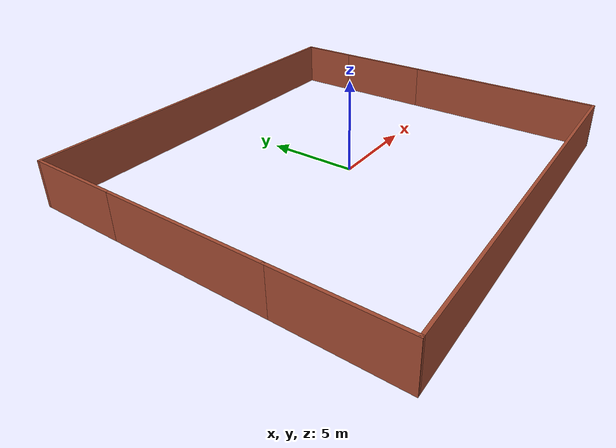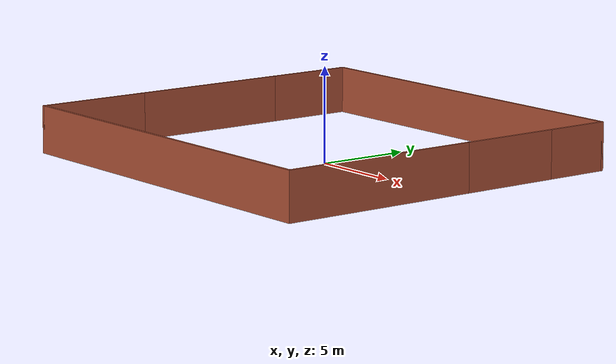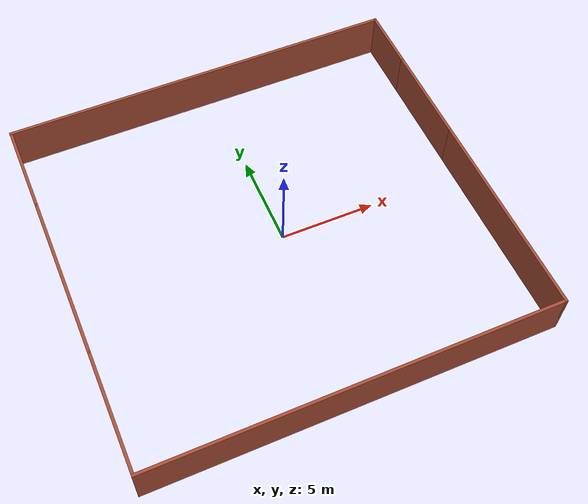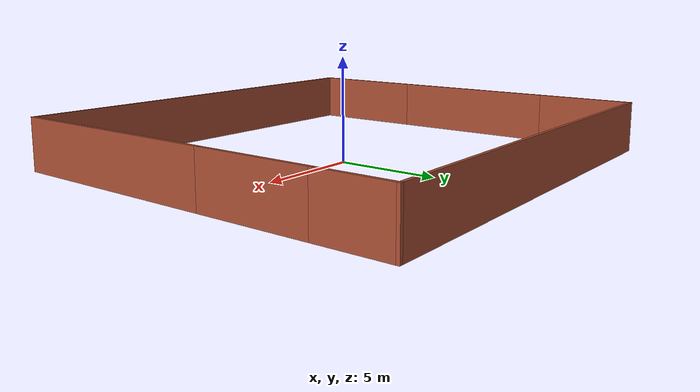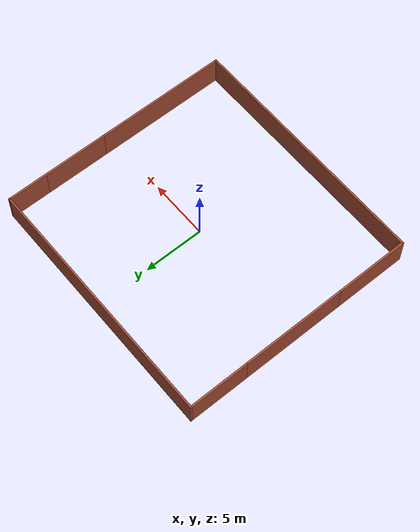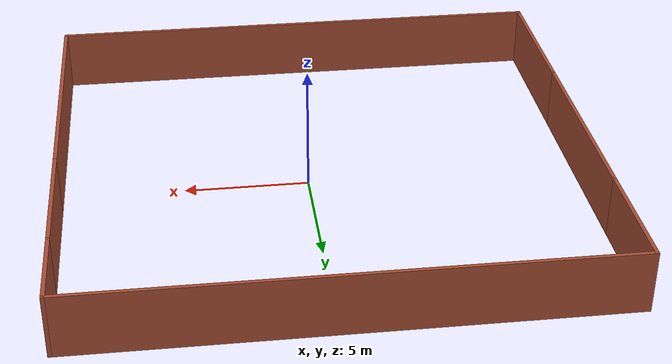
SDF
<?xml version='1.0'?>
<sdf version='1.6'>
  <model name='racecar_cones'>
    <pose frame=''>-0.555324 0.042658 0 0 -0 0</pose>
    <link name='Wall_10'>
      <collision name='Wall_10_Collision'>
        <geometry>
          <box>
            <size>6.25 0.15 2.5</size>
          </box>
        </geometry>
        <pose frame=''>0 0 1.25 0 -0 0</pose>
      </collision>
      <visual name='Wall_10_Visual'>
        <pose frame=''>0 0 1.25 0 -0 0</pose>
        <geometry>
          <box>
            <size>6.25 0.15 2.5</size>
          </box>
        </geometry>
        <material>
          <script>
            <uri>file://media/materials/scripts/gazebo.material</uri>
            <name>Gazebo/Bricks</name>
          </script>
          <ambient>1 1 1 1</ambient>
        </material>
      </visual>
      <pose frame=''>-10.425 -6.725 0 0 0 -1.5708</pose>
    </link>
    <link name='Wall_11'>
      <collision name='Wall_11_Collision'>
        <geometry>
          <box>
            <size>21 0.15 2.5</size>
          </box>
        </geometry>
        <pose frame=''>0 0 1.25 0 -0 0</pose>
      </collision>
      <visual name='Wall_11_Visual'>
        <pose frame=''>0 0 1.25 0 -0 0</pose>
        <geometry>
          <box>
            <size>21 0.15 2.5</size>
          </box>
        </geometry>
        <material>
          <script>
            <uri>file://media/materials/scripts/gazebo.material</uri>
            <name>Gazebo/Bricks</name>
          </script>
          <ambient>1 1 1 1</ambient>
        </material>
      </visual>
      <pose frame=''>0 -9.775 0 0 -0 0</pose>
    </link>
    <link name='Wall_13'>
      <collision name='Wall_13_Collision'>
        <geometry>
          <box>
            <size>11 0.15 2.5</size>
          </box>
        </geometry>
        <pose frame=''>0 0 1.25 0 -0 0</pose>
      </collision>
      <visual name='Wall_13_Visual'>
        <pose frame=''>0 0 1.25 0 -0 0</pose>
        <geometry>
          <box>
            <size>11 0.15 2.5</size>
          </box>
        </geometry>
        <material>
          <script>
            <uri>file://media/materials/scripts/gazebo.material</uri>
            <name>Gazebo/Bricks</name>
          </script>
          <ambient>1 1 1 1</ambient>
        </material>
      </visual>
      <pose frame=''>10.425 -4.35 0 0 -0 1.5708</pose>
    </link>
    <link name='Wall_15'>
      <collision name='Wall_15_Collision'>
        <geometry>
          <box>
            <size>5.5 0.15 2.5</size>
          </box>
        </geometry>
        <pose frame=''>0 0 1.25 0 -0 0</pose>
      </collision>
      <visual name='Wall_15_Visual'>
        <pose frame=''>0 0 1.25 0 -0 0</pose>
        <geometry>
          <box>
            <size>5.5 0.15 2.5</size>
          </box>
        </geometry>
        <material>
          <script>
            <uri>file://media/materials/scripts/gazebo.material</uri>
            <name>Gazebo/Bricks</name>
          </script>
          <ambient>1 1 1 1</ambient>
        </material>
      </visual>
      <pose frame=''>10.425 3.75 0 0 -0 1.5708</pose>
    </link>
    <link name='Wall_18'>
      <collision name='Wall_18_Collision'>
        <geometry>
          <box>
            <size>3.5 0.15 2.5</size>
          </box>
        </geometry>
        <pose frame=''>0 0 1.25 0 -0 0</pose>
      </collision>
      <visual name='Wall_18_Visual'>
        <pose frame=''>0 0 1.25 0 -0 0</pose>
        <geometry>
          <box>
            <size>3.5 0.15 2.5</size>
          </box>
        </geometry>
        <material>
          <script>
            <uri>file://media/materials/scripts/gazebo.material</uri>
            <name>Gazebo/Bricks</name>
          </script>
          <ambient>1 1 1 1</ambient>
        </material>
      </visual>
      <pose frame=''>10.425 8.1 0 0 -0 1.5708</pose>
    </link>
    <link name='Wall_19'>
      <collision name='Wall_19_Collision'>
        <geometry>
          <box>
            <size>21 0.15 2.5</size>
          </box>
        </geometry>
        <pose frame=''>0 0 1.25 0 -0 0</pose>
      </collision>
      <visual name='Wall_19_Visual'>
        <pose frame=''>0 0 1.25 0 -0 0</pose>
        <geometry>
          <box>
            <size>21 0.15 2.5</size>
          </box>
        </geometry>
        <material>
          <script>
            <uri>file://media/materials/scripts/gazebo.material</uri>
            <name>Gazebo/Bricks</name>
          </script>
          <ambient>1 1 1 1</ambient>
        </material>
      </visual>
      <pose frame=''>0 9.775 0 0 -0 3.14159</pose>
    </link>
    <link name='Wall_20'>
      <collision name='Wall_20_Collision'>
        <geometry>
          <box>
            <size>5 0.15 2.5</size>
          </box>
        </geometry>
        <pose frame=''>0 0 1.25 0 -0 0</pose>
      </collision>
      <visual name='Wall_20_Visual'>
        <pose frame=''>0 0 1.25 0 -0 0</pose>
        <geometry>
          <box>
            <size>5 0.15 2.5</size>
          </box>
        </geometry>
        <material>
          <script>
            <uri>file://media/materials/scripts/gazebo.material</uri>
            <name>Gazebo/Bricks</name>
          </script>
          <ambient>1 1 1 1</ambient>
        </material>
      </visual>
      <pose frame=''>-10.425 7.35 0 0 0 -1.5708</pose>
    </link>
    <link name='Wall_7'>
      <collision name='Wall_7_Collision'>
        <geometry>
          <box>
            <size>8.75 0.15 2.5</size>
          </box>
        </geometry>
        <pose frame=''>0 0 1.25 0 -0 0</pose>
      </collision>
      <visual name='Wall_7_Visual'>
        <pose frame=''>0 0 1.25 0 -0 0</pose>
        <geometry>
          <box>
            <size>8.75 0.15 2.5</size>
          </box>
        </geometry>
        <material>
          <script>
            <uri>file://media/materials/scripts/gazebo.material</uri>
            <name>Gazebo/Bricks</name>
          </script>
          <ambient>1 1 1 1</ambient>
        </material>
      </visual>
      <pose frame=''>-10.425 0.625 0 0 0 -1.5708</pose>
    </link>
    <static>1</static>
  </model>
</sdf>
